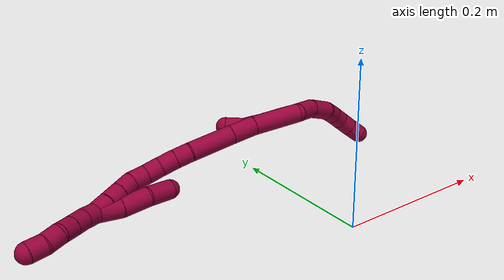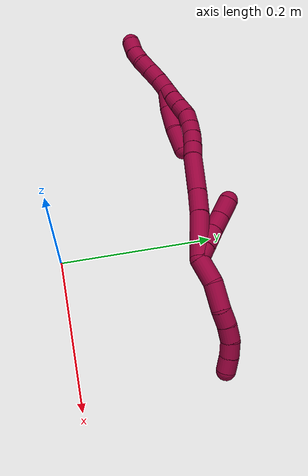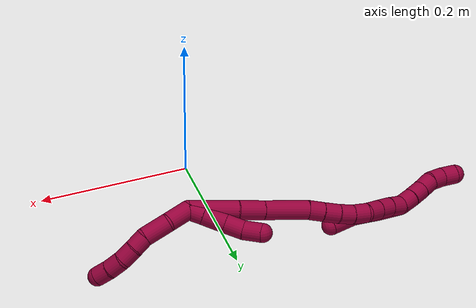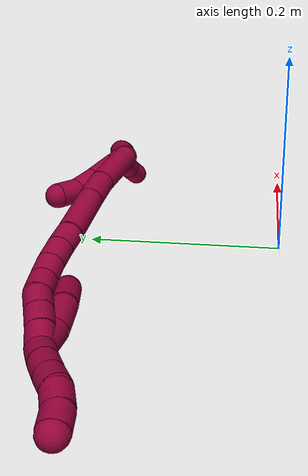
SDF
<sdf version="1.7">
 <world name="default">
  <model name="8">
   <static>0</static>
   <link name="8">
    <collision name="collision-cylinder-e_1_2_8">
     <pose>0.003864 -0.001137 0.016033 0.070781 0.235891 0.008391</pose>
     <geometry><cylinder><radius>0.0125</radius><length>0.033063</length></cylinder></geometry>
     <surface>
      <friction><ode><mu>1.16</mu><mu2>1.16</mu2><slip1>0</slip1><slip2>0</slip2></ode></friction>
      <contact><ode><kp>1e+06</kp><kd>1</kd><max_vel>0</max_vel><min_depth>0.001</min_depth></ode></contact>
     </surface>
    </collision>
    <visual name="visual-cylinder-e_1_2_8">
     <pose>0.003864 -0.001137 0.016033 0.070781 0.235891 0.008391</pose>
     <geometry><cylinder><radius>0.0125</radius><length>0.033063</length></cylinder></geometry>
     <material><ambient>0.584314 0 0.227451 1</ambient></material>
    </visual>
    <collision name="collision-cylinder-e_2_8_9">
     <pose>0.009689 -0.008103 0.048345 0.343881 0.112957 0.019636</pose>
     <geometry><cylinder><radius>0.0125</radius><length>0.034803</length></cylinder></geometry>
     <surface>
      <friction><ode><mu>1.16</mu><mu2>1.16</mu2><slip1>0</slip1><slip2>0</slip2></ode></friction>
      <contact><ode><kp>1e+06</kp><kd>1</kd><max_vel>0</max_vel><min_depth>0.001</min_depth></ode></contact>
     </surface>
    </collision>
    <visual name="visual-cylinder-e_2_8_9">
     <pose>0.009689 -0.008103 0.048345 0.343881 0.112957 0.019636</pose>
     <geometry><cylinder><radius>0.0125</radius><length>0.034803</length></cylinder></geometry>
     <material><ambient>0.584314 0 0.227451 1</ambient></material>
    </visual>
    <collision name="collision-cylinder-e_3_9_10">
     <pose>0.014758 -0.018934 0.072836 0.547047 0.312651 0.08838</pose>
     <geometry><cylinder><radius>0.0125</radius><length>0.020211</length></cylinder></geometry>
     <surface>
      <friction><ode><mu>1.16</mu><mu2>1.16</mu2><slip1>0</slip1><slip2>0</slip2></ode></friction>
      <contact><ode><kp>1e+06</kp><kd>1</kd><max_vel>0</max_vel><min_depth>0.001</min_depth></ode></contact>
     </surface>
    </collision>
    <visual name="visual-cylinder-e_3_9_10">
     <pose>0.014758 -0.018934 0.072836 0.547047 0.312651 0.08838</pose>
     <geometry><cylinder><radius>0.0125</radius><length>0.020211</length></cylinder></geometry>
     <material><ambient>0.584314 0 0.227451 1</ambient></material>
    </visual>
    <collision name="collision-cylinder-e_4_10_11">
     <pose>0.02012 -0.030255 0.089233 0.657522 0.214568 0.073447</pose>
     <geometry><cylinder><radius>0.0125</radius><length>0.021166</length></cylinder></geometry>
     <surface>
      <friction><ode><mu>1.16</mu><mu2>1.16</mu2><slip1>0</slip1><slip2>0</slip2></ode></friction>
      <contact><ode><kp>1e+06</kp><kd>1</kd><max_vel>0</max_vel><min_depth>0.001</min_depth></ode></contact>
     </surface>
    </collision>
    <visual name="visual-cylinder-e_4_10_11">
     <pose>0.02012 -0.030255 0.089233 0.657522 0.214568 0.073447</pose>
     <geometry><cylinder><radius>0.0125</radius><length>0.021166</length></cylinder></geometry>
     <material><ambient>0.584314 0 0.227451 1</ambient></material>
    </visual>
    <collision name="collision-cylinder-e_5_11_12">
     <pose>0.022172 -0.044016 0.104628 0.801131 -0.01941 -0.00822</pose>
     <geometry><cylinder><radius>0.0125</radius><length>0.020727</length></cylinder></geometry>
     <surface>
      <friction><ode><mu>1.16</mu><mu2>1.16</mu2><slip1>0</slip1><slip2>0</slip2></ode></friction>
      <contact><ode><kp>1e+06</kp><kd>1</kd><max_vel>0</max_vel><min_depth>0.001</min_depth></ode></contact>
     </surface>
    </collision>
    <visual name="visual-cylinder-e_5_11_12">
     <pose>0.022172 -0.044016 0.104628 0.801131 -0.01941 -0.00822</pose>
     <geometry><cylinder><radius>0.0125</radius><length>0.020727</length></cylinder></geometry>
     <material><ambient>0.584314 0 0.227451 1</ambient></material>
    </visual>
    <collision name="collision-cylinder-e_6_12_6">
     <pose>0.0204 -0.05883 0.118432 0.84112 -0.1575 -0.070558</pose>
     <geometry><cylinder><radius>0.0125</radius><length>0.02003</length></cylinder></geometry>
     <surface>
      <friction><ode><mu>1.16</mu><mu2>1.16</mu2><slip1>0</slip1><slip2>0</slip2></ode></friction>
      <contact><ode><kp>1e+06</kp><kd>1</kd><max_vel>0</max_vel><min_depth>0.001</min_depth></ode></contact>
     </surface>
    </collision>
    <visual name="visual-cylinder-e_6_12_6">
     <pose>0.0204 -0.05883 0.118432 0.84112 -0.1575 -0.070558</pose>
     <geometry><cylinder><radius>0.0125</radius><length>0.02003</length></cylinder></geometry>
     <material><ambient>0.584314 0 0.227451 1</ambient></material>
    </visual>
    <collision name="collision-cylinder-e_1_2_13">
     <pose>0.006834 9.9e-05 -0.007502 -3.12834 0.738783 -3.10737</pose>
     <geometry><cylinder><radius>0.0125</radius><length>0.020297</length></cylinder></geometry>
     <surface>
      <friction><ode><mu>1.16</mu><mu2>1.16</mu2><slip1>0</slip1><slip2>0</slip2></ode></friction>
      <contact><ode><kp>1e+06</kp><kd>1</kd><max_vel>0</max_vel><min_depth>0.001</min_depth></ode></contact>
     </surface>
    </collision>
    <visual name="visual-cylinder-e_1_2_13">
     <pose>0.006834 9.9e-05 -0.007502 -3.12834 0.738783 -3.10737</pose>
     <geometry><cylinder><radius>0.0125</radius><length>0.020297</length></cylinder></geometry>
     <material><ambient>0.584314 0 0.227451 1</ambient></material>
    </visual>
    <collision name="collision-cylinder-e_2_13_14">
     <pose>0.023613 -6.4e-05 -0.025812 3.11731 0.743705 3.07933</pose>
     <geometry><cylinder><radius>0.0125</radius><length>0.029378</length></cylinder></geometry>
     <surface>
      <friction><ode><mu>1.16</mu><mu2>1.16</mu2><slip1>0</slip1><slip2>0</slip2></ode></friction>
      <contact><ode><kp>1e+06</kp><kd>1</kd><max_vel>0</max_vel><min_depth>0.001</min_depth></ode></contact>
     </surface>
    </collision>
    <visual name="visual-cylinder-e_2_13_14">
     <pose>0.023613 -6.4e-05 -0.025812 3.11731 0.743705 3.07933</pose>
     <geometry><cylinder><radius>0.0125</radius><length>0.029378</length></cylinder></geometry>
     <material><ambient>0.584314 0 0.227451 1</ambient></material>
    </visual>
    <collision name="collision-cylinder-e_3_14_15">
     <pose>0.042275 9.3e-05 -0.045663 -3.09531 0.766484 -3.0269</pose>
     <geometry><cylinder><radius>0.0125</radius><length>0.025136</length></cylinder></geometry>
     <surface>
      <friction><ode><mu>1.16</mu><mu2>1.16</mu2><slip1>0</slip1><slip2>0</slip2></ode></friction>
      <contact><ode><kp>1e+06</kp><kd>1</kd><max_vel>0</max_vel><min_depth>0.001</min_depth></ode></contact>
     </surface>
    </collision>
    <visual name="visual-cylinder-e_3_14_15">
     <pose>0.042275 9.3e-05 -0.045663 -3.09531 0.766484 -3.0269</pose>
     <geometry><cylinder><radius>0.0125</radius><length>0.025136</length></cylinder></geometry>
     <material><ambient>0.584314 0 0.227451 1</ambient></material>
    </visual>
    <collision name="collision-cylinder-e_4_15_5">
     <pose>0.058852 0.004442 -0.063728 -2.73073 0.673981 -2.06851</pose>
     <geometry><cylinder><radius>0.0125</radius><length>0.025189</length></cylinder></geometry>
     <surface>
      <friction><ode><mu>1.16</mu><mu2>1.16</mu2><slip1>0</slip1><slip2>0</slip2></ode></friction>
      <contact><ode><kp>1e+06</kp><kd>1</kd><max_vel>0</max_vel><min_depth>0.001</min_depth></ode></contact>
     </surface>
    </collision>
    <visual name="visual-cylinder-e_4_15_5">
     <pose>0.058852 0.004442 -0.063728 -2.73073 0.673981 -2.06851</pose>
     <geometry><cylinder><radius>0.0125</radius><length>0.025189</length></cylinder></geometry>
     <material><ambient>0.584314 0 0.227451 1</ambient></material>
    </visual>
    <collision name="collision-cylinder-e_1_2_16">
     <pose>0.011129 0.001044 -0.030343 -3.10719 0.351343 -2.94836</pose>
     <geometry><cylinder><radius>0.0125</radius><length>0.064672</length></cylinder></geometry>
     <surface>
      <friction><ode><mu>1.16</mu><mu2>1.16</mu2><slip1>0</slip1><slip2>0</slip2></ode></friction>
      <contact><ode><kp>1e+06</kp><kd>1</kd><max_vel>0</max_vel><min_depth>0.001</min_depth></ode></contact>
     </surface>
    </collision>
    <visual name="visual-cylinder-e_1_2_16">
     <pose>0.011129 0.001044 -0.030343 -3.10719 0.351343 -2.94836</pose>
     <geometry><cylinder><radius>0.0125</radius><length>0.064672</length></cylinder></geometry>
     <material><ambient>0.584314 0 0.227451 1</ambient></material>
    </visual>
    <collision name="collision-cylinder-e_2_16_17">
     <pose>0.027191 0.001173 -0.076692 3.08447 0.298522 2.7661</pose>
     <geometry><cylinder><radius>0.0125</radius><length>0.033549</length></cylinder></geometry>
     <surface>
      <friction><ode><mu>1.16</mu><mu2>1.16</mu2><slip1>0</slip1><slip2>0</slip2></ode></friction>
      <contact><ode><kp>1e+06</kp><kd>1</kd><max_vel>0</max_vel><min_depth>0.001</min_depth></ode></contact>
     </surface>
    </collision>
    <visual name="visual-cylinder-e_2_16_17">
     <pose>0.027191 0.001173 -0.076692 3.08447 0.298522 2.7661</pose>
     <geometry><cylinder><radius>0.0125</radius><length>0.033549</length></cylinder></geometry>
     <material><ambient>0.584314 0 0.227451 1</ambient></material>
    </visual>
    <collision name="collision-cylinder-e_3_17_18">
     <pose>0.040161 -0.001714 -0.121115 3.07231 0.274983 2.65075</pose>
     <geometry><cylinder><radius>0.0125</radius><length>0.059195</length></cylinder></geometry>
     <surface>
      <friction><ode><mu>1.16</mu><mu2>1.16</mu2><slip1>0</slip1><slip2>0</slip2></ode></friction>
      <contact><ode><kp>1e+06</kp><kd>1</kd><max_vel>0</max_vel><min_depth>0.001</min_depth></ode></contact>
     </surface>
    </collision>
    <visual name="visual-cylinder-e_3_17_18">
     <pose>0.040161 -0.001714 -0.121115 3.07231 0.274983 2.65075</pose>
     <geometry><cylinder><radius>0.0125</radius><length>0.059195</length></cylinder></geometry>
     <material><ambient>0.584314 0 0.227451 1</ambient></material>
    </visual>
    <collision name="collision-cylinder-e_4_18_19">
     <pose>0.052242 -0.004884 -0.158943 3.01497 0.402972 2.53969</pose>
     <geometry><cylinder><radius>0.0125</radius><length>0.020626</length></cylinder></geometry>
     <surface>
      <friction><ode><mu>1.16</mu><mu2>1.16</mu2><slip1>0</slip1><slip2>0</slip2></ode></friction>
      <contact><ode><kp>1e+06</kp><kd>1</kd><max_vel>0</max_vel><min_depth>0.001</min_depth></ode></contact>
     </surface>
    </collision>
    <visual name="visual-cylinder-e_4_18_19">
     <pose>0.052242 -0.004884 -0.158943 3.01497 0.402972 2.53969</pose>
     <geometry><cylinder><radius>0.0125</radius><length>0.020626</length></cylinder></geometry>
     <material><ambient>0.584314 0 0.227451 1</ambient></material>
    </visual>
    <collision name="collision-cylinder-e_5_19_20">
     <pose>0.060112 -0.007687 -0.178243 2.98073 0.364755 2.31749</pose>
     <geometry><cylinder><radius>0.0125</radius><length>0.021447</length></cylinder></geometry>
     <surface>
      <friction><ode><mu>1.16</mu><mu2>1.16</mu2><slip1>0</slip1><slip2>0</slip2></ode></friction>
      <contact><ode><kp>1e+06</kp><kd>1</kd><max_vel>0</max_vel><min_depth>0.001</min_depth></ode></contact>
     </surface>
    </collision>
    <visual name="visual-cylinder-e_5_19_20">
     <pose>0.060112 -0.007687 -0.178243 2.98073 0.364755 2.31749</pose>
     <geometry><cylinder><radius>0.0125</radius><length>0.021447</length></cylinder></geometry>
     <material><ambient>0.584314 0 0.227451 1</ambient></material>
    </visual>
    <collision name="collision-cylinder-e_6_20_21">
     <pose>0.066505 -0.011017 -0.197643 2.96216 0.259635 1.93491</pose>
     <geometry><cylinder><radius>0.0125</radius><length>0.020003</length></cylinder></geometry>
     <surface>
      <friction><ode><mu>1.16</mu><mu2>1.16</mu2><slip1>0</slip1><slip2>0</slip2></ode></friction>
      <contact><ode><kp>1e+06</kp><kd>1</kd><max_vel>0</max_vel><min_depth>0.001</min_depth></ode></contact>
     </surface>
    </collision>
    <visual name="visual-cylinder-e_6_20_21">
     <pose>0.066505 -0.011017 -0.197643 2.96216 0.259635 1.93491</pose>
     <geometry><cylinder><radius>0.0125</radius><length>0.020003</length></cylinder></geometry>
     <material><ambient>0.584314 0 0.227451 1</ambient></material>
    </visual>
    <collision name="collision-cylinder-e_7_21_22">
     <pose>0.070543 -0.013627 -0.217215 3.05389 0.144618 2.05233</pose>
     <geometry><cylinder><radius>0.0125</radius><length>0.020413</length></cylinder></geometry>
     <surface>
      <friction><ode><mu>1.16</mu><mu2>1.16</mu2><slip1>0</slip1><slip2>0</slip2></ode></friction>
      <contact><ode><kp>1e+06</kp><kd>1</kd><max_vel>0</max_vel><min_depth>0.001</min_depth></ode></contact>
     </surface>
    </collision>
    <visual name="visual-cylinder-e_7_21_22">
     <pose>0.070543 -0.013627 -0.217215 3.05389 0.144618 2.05233</pose>
     <geometry><cylinder><radius>0.0125</radius><length>0.020413</length></cylinder></geometry>
     <material><ambient>0.584314 0 0.227451 1</ambient></material>
    </visual>
    <collision name="collision-cylinder-e_8_22_23">
     <pose>0.070941 -0.017363 -0.236814 2.85107 -0.107354 -0.703955</pose>
     <geometry><cylinder><radius>0.0125</radius><length>0.020026</length></cylinder></geometry>
     <surface>
      <friction><ode><mu>1.16</mu><mu2>1.16</mu2><slip1>0</slip1><slip2>0</slip2></ode></friction>
      <contact><ode><kp>1e+06</kp><kd>1</kd><max_vel>0</max_vel><min_depth>0.001</min_depth></ode></contact>
     </surface>
    </collision>
    <visual name="visual-cylinder-e_8_22_23">
     <pose>0.070941 -0.017363 -0.236814 2.85107 -0.107354 -0.703955</pose>
     <geometry><cylinder><radius>0.0125</radius><length>0.020026</length></cylinder></geometry>
     <material><ambient>0.584314 0 0.227451 1</ambient></material>
    </visual>
    <collision name="collision-cylinder-e_9_23_24">
     <pose>0.068897 -0.023051 -0.255894 2.85262 -0.097302 -0.645838</pose>
     <geometry><cylinder><radius>0.0125</radius><length>0.020002</length></cylinder></geometry>
     <surface>
      <friction><ode><mu>1.16</mu><mu2>1.16</mu2><slip1>0</slip1><slip2>0</slip2></ode></friction>
      <contact><ode><kp>1e+06</kp><kd>1</kd><max_vel>0</max_vel><min_depth>0.001</min_depth></ode></contact>
     </surface>
    </collision>
    <visual name="visual-cylinder-e_9_23_24">
     <pose>0.068897 -0.023051 -0.255894 2.85262 -0.097302 -0.645838</pose>
     <geometry><cylinder><radius>0.0125</radius><length>0.020002</length></cylinder></geometry>
     <material><ambient>0.584314 0 0.227451 1</ambient></material>
    </visual>
    <collision name="collision-cylinder-e_10_24_1">
     <pose>0.067777 -0.028964 -0.274984 2.82998 -0.014709 -0.093577</pose>
     <geometry><cylinder><radius>0.0125</radius><length>0.020067</length></cylinder></geometry>
     <surface>
      <friction><ode><mu>1.16</mu><mu2>1.16</mu2><slip1>0</slip1><slip2>0</slip2></ode></friction>
      <contact><ode><kp>1e+06</kp><kd>1</kd><max_vel>0</max_vel><min_depth>0.001</min_depth></ode></contact>
     </surface>
    </collision>
    <visual name="visual-cylinder-e_10_24_1">
     <pose>0.067777 -0.028964 -0.274984 2.82998 -0.014709 -0.093577</pose>
     <geometry><cylinder><radius>0.0125</radius><length>0.020067</length></cylinder></geometry>
     <material><ambient>0.584314 0 0.227451 1</ambient></material>
    </visual>
    <collision name="collision-cylinder-e_1_1_25">
     <pose>0.064564 -0.032076 -0.294052 3.13773 -0.311589 -3.11698</pose>
     <geometry><cylinder><radius>0.0125</radius><length>0.02</length></cylinder></geometry>
     <surface>
      <friction><ode><mu>1.16</mu><mu2>1.16</mu2><slip1>0</slip1><slip2>0</slip2></ode></friction>
      <contact><ode><kp>1e+06</kp><kd>1</kd><max_vel>0</max_vel><min_depth>0.001</min_depth></ode></contact>
     </surface>
    </collision>
    <visual name="visual-cylinder-e_1_1_25">
     <pose>0.064564 -0.032076 -0.294052 3.13773 -0.311589 -3.11698</pose>
     <geometry><cylinder><radius>0.0125</radius><length>0.02</length></cylinder></geometry>
     <material><ambient>0.584314 0 0.227451 1</ambient></material>
    </visual>
    <collision name="collision-cylinder-e_2_25_26">
     <pose>0.05784 -0.032672 -0.31286 3.08145 -0.374581 -2.82678</pose>
     <geometry><cylinder><radius>0.0125</radius><length>0.02</length></cylinder></geometry>
     <surface>
      <friction><ode><mu>1.16</mu><mu2>1.16</mu2><slip1>0</slip1><slip2>0</slip2></ode></friction>
      <contact><ode><kp>1e+06</kp><kd>1</kd><max_vel>0</max_vel><min_depth>0.001</min_depth></ode></contact>
     </surface>
    </collision>
    <visual name="visual-cylinder-e_2_25_26">
     <pose>0.05784 -0.032672 -0.31286 3.08145 -0.374581 -2.82678</pose>
     <geometry><cylinder><radius>0.0125</radius><length>0.02</length></cylinder></geometry>
     <material><ambient>0.584314 0 0.227451 1</ambient></material>
    </visual>
    <collision name="collision-cylinder-e_3_26_27">
     <pose>0.050109 -0.0335 -0.331279 3.11219 -0.419326 -3.00362</pose>
     <geometry><cylinder><radius>0.0125</radius><length>0.02</length></cylinder></geometry>
     <surface>
      <friction><ode><mu>1.16</mu><mu2>1.16</mu2><slip1>0</slip1><slip2>0</slip2></ode></friction>
      <contact><ode><kp>1e+06</kp><kd>1</kd><max_vel>0</max_vel><min_depth>0.001</min_depth></ode></contact>
     </surface>
    </collision>
    <visual name="visual-cylinder-e_3_26_27">
     <pose>0.050109 -0.0335 -0.331279 3.11219 -0.419326 -3.00362</pose>
     <geometry><cylinder><radius>0.0125</radius><length>0.02</length></cylinder></geometry>
     <material><ambient>0.584314 0 0.227451 1</ambient></material>
    </visual>
    <collision name="collision-cylinder-e_4_27_28">
     <pose>0.044697 -0.035641 -0.35014 2.95149 -0.134527 -1.23029</pose>
     <geometry><cylinder><radius>0.0125</radius><length>0.02</length></cylinder></geometry>
     <surface>
      <friction><ode><mu>1.16</mu><mu2>1.16</mu2><slip1>0</slip1><slip2>0</slip2></ode></friction>
      <contact><ode><kp>1e+06</kp><kd>1</kd><max_vel>0</max_vel><min_depth>0.001</min_depth></ode></contact>
     </surface>
    </collision>
    <visual name="visual-cylinder-e_4_27_28">
     <pose>0.044697 -0.035641 -0.35014 2.95149 -0.134527 -1.23029</pose>
     <geometry><cylinder><radius>0.0125</radius><length>0.02</length></cylinder></geometry>
     <material><ambient>0.584314 0 0.227451 1</ambient></material>
    </visual>
    <collision name="collision-cylinder-e_5_28_4">
     <pose>0.04391 -0.038009 -0.369844 3.09197 0.055448 1.68157</pose>
     <geometry><cylinder><radius>0.0125</radius><length>0.02</length></cylinder></geometry>
     <surface>
      <friction><ode><mu>1.16</mu><mu2>1.16</mu2><slip1>0</slip1><slip2>0</slip2></ode></friction>
      <contact><ode><kp>1e+06</kp><kd>1</kd><max_vel>0</max_vel><min_depth>0.001</min_depth></ode></contact>
     </surface>
    </collision>
    <visual name="visual-cylinder-e_5_28_4">
     <pose>0.04391 -0.038009 -0.369844 3.09197 0.055448 1.68157</pose>
     <geometry><cylinder><radius>0.0125</radius><length>0.02</length></cylinder></geometry>
     <material><ambient>0.584314 0 0.227451 1</ambient></material>
    </visual>
    <collision name="collision-cylinder-e_1_1_29">
     <pose>0.065356 -0.034732 -0.269555 0.177851 -0.148329 -0.013249</pose>
     <geometry><cylinder><radius>0.0125</radius><length>0.030774</length></cylinder></geometry>
     <surface>
      <friction><ode><mu>1.16</mu><mu2>1.16</mu2><slip1>0</slip1><slip2>0</slip2></ode></friction>
      <contact><ode><kp>1e+06</kp><kd>1</kd><max_vel>0</max_vel><min_depth>0.001</min_depth></ode></contact>
     </surface>
    </collision>
    <visual name="visual-cylinder-e_1_1_29">
     <pose>0.065356 -0.034732 -0.269555 0.177851 -0.148329 -0.013249</pose>
     <geometry><cylinder><radius>0.0125</radius><length>0.030774</length></cylinder></geometry>
     <material><ambient>0.584314 0 0.227451 1</ambient></material>
    </visual>
    <collision name="collision-cylinder-e_2_29_30">
     <pose>0.061159 -0.037136 -0.236832 -0.016228 -0.107945 0.000877</pose>
     <geometry><cylinder><radius>0.0125</radius><length>0.035703</length></cylinder></geometry>
     <surface>
      <friction><ode><mu>1.16</mu><mu2>1.16</mu2><slip1>0</slip1><slip2>0</slip2></ode></friction>
      <contact><ode><kp>1e+06</kp><kd>1</kd><max_vel>0</max_vel><min_depth>0.001</min_depth></ode></contact>
     </surface>
    </collision>
    <visual name="visual-cylinder-e_2_29_30">
     <pose>0.061159 -0.037136 -0.236832 -0.016228 -0.107945 0.000877</pose>
     <geometry><cylinder><radius>0.0125</radius><length>0.035703</length></cylinder></geometry>
     <material><ambient>0.584314 0 0.227451 1</ambient></material>
    </visual>
    <collision name="collision-cylinder-e_3_30_3">
     <pose>0.060508 -0.038273 -0.202434 0.085378 0.07598 0.003247</pose>
     <geometry><cylinder><radius>0.0125</radius><length>0.033523</length></cylinder></geometry>
     <surface>
      <friction><ode><mu>1.16</mu><mu2>1.16</mu2><slip1>0</slip1><slip2>0</slip2></ode></friction>
      <contact><ode><kp>1e+06</kp><kd>1</kd><max_vel>0</max_vel><min_depth>0.001</min_depth></ode></contact>
     </surface>
    </collision>
    <visual name="visual-cylinder-e_3_30_3">
     <pose>0.060508 -0.038273 -0.202434 0.085378 0.07598 0.003247</pose>
     <geometry><cylinder><radius>0.0125</radius><length>0.033523</length></cylinder></geometry>
     <material><ambient>0.584314 0 0.227451 1</ambient></material>
    </visual>
    <collision name="collision-sphere-3">
     <pose>0.06178 -0.039698 -0.185782 0 -0 0</pose>
     <geometry><sphere><radius>0.0125</radius></sphere></geometry>
     <surface>
      <friction><ode><mu>1.16</mu><mu2>1.16</mu2><slip1>0</slip1><slip2>0</slip2></ode></friction>
      <contact><ode><kp>1e+06</kp><kd>1</kd><max_vel>0</max_vel><min_depth>0.001</min_depth></ode></contact>
     </surface>
    </collision>
    <visual name="visual-sphere-3">
     <pose>0.06178 -0.039698 -0.185782 0 -0 0</pose>
     <geometry><sphere><radius>0.0125</radius></sphere></geometry>
     <material><ambient>0.584314 0 0.227451 1</ambient></material>
    </visual>
    <collision name="collision-sphere-30">
     <pose>0.059235 -0.036848 -0.219087 0 -0 0</pose>
     <geometry><sphere><radius>0.0125</radius></sphere></geometry>
     <surface>
      <friction><ode><mu>1.16</mu><mu2>1.16</mu2><slip1>0</slip1><slip2>0</slip2></ode></friction>
      <contact><ode><kp>1e+06</kp><kd>1</kd><max_vel>0</max_vel><min_depth>0.001</min_depth></ode></contact>
     </surface>
    </collision>
    <visual name="visual-sphere-30">
     <pose>0.059235 -0.036848 -0.219087 0 -0 0</pose>
     <geometry><sphere><radius>0.0125</radius></sphere></geometry>
     <material><ambient>0.584314 0 0.227451 1</ambient></material>
    </visual>
    <collision name="collision-sphere-29">
     <pose>0.063082 -0.037424 -0.254577 0 -0 0</pose>
     <geometry><sphere><radius>0.0125</radius></sphere></geometry>
     <surface>
      <friction><ode><mu>1.16</mu><mu2>1.16</mu2><slip1>0</slip1><slip2>0</slip2></ode></friction>
      <contact><ode><kp>1e+06</kp><kd>1</kd><max_vel>0</max_vel><min_depth>0.001</min_depth></ode></contact>
     </surface>
    </collision>
    <visual name="visual-sphere-29">
     <pose>0.063082 -0.037424 -0.254577 0 -0 0</pose>
     <geometry><sphere><radius>0.0125</radius></sphere></geometry>
     <material><ambient>0.584314 0 0.227451 1</ambient></material>
    </visual>
    <collision name="collision-sphere-4">
     <pose>0.044464 -0.038504 -0.379816 0 -0 0</pose>
     <geometry><sphere><radius>0.0125</radius></sphere></geometry>
     <surface>
      <friction><ode><mu>1.16</mu><mu2>1.16</mu2><slip1>0</slip1><slip2>0</slip2></ode></friction>
      <contact><ode><kp>1e+06</kp><kd>1</kd><max_vel>0</max_vel><min_depth>0.001</min_depth></ode></contact>
     </surface>
    </collision>
    <visual name="visual-sphere-4">
     <pose>0.044464 -0.038504 -0.379816 0 -0 0</pose>
     <geometry><sphere><radius>0.0125</radius></sphere></geometry>
     <material><ambient>0.584314 0 0.227451 1</ambient></material>
    </visual>
    <collision name="collision-sphere-28">
     <pose>0.043355 -0.037514 -0.359871 0 -0 0</pose>
     <geometry><sphere><radius>0.0125</radius></sphere></geometry>
     <surface>
      <friction><ode><mu>1.16</mu><mu2>1.16</mu2><slip1>0</slip1><slip2>0</slip2></ode></friction>
      <contact><ode><kp>1e+06</kp><kd>1</kd><max_vel>0</max_vel><min_depth>0.001</min_depth></ode></contact>
     </surface>
    </collision>
    <visual name="visual-sphere-28">
     <pose>0.043355 -0.037514 -0.359871 0 -0 0</pose>
     <geometry><sphere><radius>0.0125</radius></sphere></geometry>
     <material><ambient>0.584314 0 0.227451 1</ambient></material>
    </visual>
    <collision name="collision-sphere-27">
     <pose>0.046038 -0.033769 -0.340409 0 -0 0</pose>
     <geometry><sphere><radius>0.0125</radius></sphere></geometry>
     <surface>
      <friction><ode><mu>1.16</mu><mu2>1.16</mu2><slip1>0</slip1><slip2>0</slip2></ode></friction>
      <contact><ode><kp>1e+06</kp><kd>1</kd><max_vel>0</max_vel><min_depth>0.001</min_depth></ode></contact>
     </surface>
    </collision>
    <visual name="visual-sphere-27">
     <pose>0.046038 -0.033769 -0.340409 0 -0 0</pose>
     <geometry><sphere><radius>0.0125</radius></sphere></geometry>
     <material><ambient>0.584314 0 0.227451 1</ambient></material>
    </visual>
    <collision name="collision-sphere-26">
     <pose>0.054181 -0.033232 -0.32215 0 -0 0</pose>
     <geometry><sphere><radius>0.0125</radius></sphere></geometry>
     <surface>
      <friction><ode><mu>1.16</mu><mu2>1.16</mu2><slip1>0</slip1><slip2>0</slip2></ode></friction>
      <contact><ode><kp>1e+06</kp><kd>1</kd><max_vel>0</max_vel><min_depth>0.001</min_depth></ode></contact>
     </surface>
    </collision>
    <visual name="visual-sphere-26">
     <pose>0.054181 -0.033232 -0.32215 0 -0 0</pose>
     <geometry><sphere><radius>0.0125</radius></sphere></geometry>
     <material><ambient>0.584314 0 0.227451 1</ambient></material>
    </visual>
    <collision name="collision-sphere-25">
     <pose>0.061498 -0.032113 -0.30357 0 -0 0</pose>
     <geometry><sphere><radius>0.0125</radius></sphere></geometry>
     <surface>
      <friction><ode><mu>1.16</mu><mu2>1.16</mu2><slip1>0</slip1><slip2>0</slip2></ode></friction>
      <contact><ode><kp>1e+06</kp><kd>1</kd><max_vel>0</max_vel><min_depth>0.001</min_depth></ode></contact>
     </surface>
    </collision>
    <visual name="visual-sphere-25">
     <pose>0.061498 -0.032113 -0.30357 0 -0 0</pose>
     <geometry><sphere><radius>0.0125</radius></sphere></geometry>
     <material><ambient>0.584314 0 0.227451 1</ambient></material>
    </visual>
    <collision name="collision-sphere-1">
     <pose>0.06763 -0.032039 -0.284533 0 -0 0</pose>
     <geometry><sphere><radius>0.0125</radius></sphere></geometry>
     <surface>
      <friction><ode><mu>1.16</mu><mu2>1.16</mu2><slip1>0</slip1><slip2>0</slip2></ode></friction>
      <contact><ode><kp>1e+06</kp><kd>1</kd><max_vel>0</max_vel><min_depth>0.001</min_depth></ode></contact>
     </surface>
    </collision>
    <visual name="visual-sphere-1">
     <pose>0.06763 -0.032039 -0.284533 0 -0 0</pose>
     <geometry><sphere><radius>0.0125</radius></sphere></geometry>
     <material><ambient>0.584314 0 0.227451 1</ambient></material>
    </visual>
    <collision name="collision-sphere-24">
     <pose>0.067925 -0.025888 -0.265435 0 -0 0</pose>
     <geometry><sphere><radius>0.0125</radius></sphere></geometry>
     <surface>
      <friction><ode><mu>1.16</mu><mu2>1.16</mu2><slip1>0</slip1><slip2>0</slip2></ode></friction>
      <contact><ode><kp>1e+06</kp><kd>1</kd><max_vel>0</max_vel><min_depth>0.001</min_depth></ode></contact>
     </surface>
    </collision>
    <visual name="visual-sphere-24">
     <pose>0.067925 -0.025888 -0.265435 0 -0 0</pose>
     <geometry><sphere><radius>0.0125</radius></sphere></geometry>
     <material><ambient>0.584314 0 0.227451 1</ambient></material>
    </visual>
    <collision name="collision-sphere-23">
     <pose>0.069868 -0.020215 -0.246353 0 -0 0</pose>
     <geometry><sphere><radius>0.0125</radius></sphere></geometry>
     <surface>
      <friction><ode><mu>1.16</mu><mu2>1.16</mu2><slip1>0</slip1><slip2>0</slip2></ode></friction>
      <contact><ode><kp>1e+06</kp><kd>1</kd><max_vel>0</max_vel><min_depth>0.001</min_depth></ode></contact>
     </surface>
    </collision>
    <visual name="visual-sphere-23">
     <pose>0.069868 -0.020215 -0.246353 0 -0 0</pose>
     <geometry><sphere><radius>0.0125</radius></sphere></geometry>
     <material><ambient>0.584314 0 0.227451 1</ambient></material>
    </visual>
    <collision name="collision-sphere-22">
     <pose>0.072014 -0.014511 -0.227276 0 -0 0</pose>
     <geometry><sphere><radius>0.0125</radius></sphere></geometry>
     <surface>
      <friction><ode><mu>1.16</mu><mu2>1.16</mu2><slip1>0</slip1><slip2>0</slip2></ode></friction>
      <contact><ode><kp>1e+06</kp><kd>1</kd><max_vel>0</max_vel><min_depth>0.001</min_depth></ode></contact>
     </surface>
    </collision>
    <visual name="visual-sphere-22">
     <pose>0.072014 -0.014511 -0.227276 0 -0 0</pose>
     <geometry><sphere><radius>0.0125</radius></sphere></geometry>
     <material><ambient>0.584314 0 0.227451 1</ambient></material>
    </visual>
    <collision name="collision-sphere-21">
     <pose>0.069072 -0.012742 -0.207154 0 -0 0</pose>
     <geometry><sphere><radius>0.0125</radius></sphere></geometry>
     <surface>
      <friction><ode><mu>1.16</mu><mu2>1.16</mu2><slip1>0</slip1><slip2>0</slip2></ode></friction>
      <contact><ode><kp>1e+06</kp><kd>1</kd><max_vel>0</max_vel><min_depth>0.001</min_depth></ode></contact>
     </surface>
    </collision>
    <visual name="visual-sphere-21">
     <pose>0.069072 -0.012742 -0.207154 0 -0 0</pose>
     <geometry><sphere><radius>0.0125</radius></sphere></geometry>
     <material><ambient>0.584314 0 0.227451 1</ambient></material>
    </visual>
    <collision name="collision-sphere-12">
     <pose>0.021971 -0.051457 0.111838 0 -0 0</pose>
     <geometry><sphere><radius>0.0125</radius></sphere></geometry>
     <surface>
      <friction><ode><mu>1.16</mu><mu2>1.16</mu2><slip1>0</slip1><slip2>0</slip2></ode></friction>
      <contact><ode><kp>1e+06</kp><kd>1</kd><max_vel>0</max_vel><min_depth>0.001</min_depth></ode></contact>
     </surface>
    </collision>
    <visual name="visual-sphere-12">
     <pose>0.021971 -0.051457 0.111838 0 -0 0</pose>
     <geometry><sphere><radius>0.0125</radius></sphere></geometry>
     <material><ambient>0.584314 0 0.227451 1</ambient></material>
    </visual>
    <collision name="collision-sphere-11">
     <pose>0.022373 -0.036575 0.097417 0 -0 0</pose>
     <geometry><sphere><radius>0.0125</radius></sphere></geometry>
     <surface>
      <friction><ode><mu>1.16</mu><mu2>1.16</mu2><slip1>0</slip1><slip2>0</slip2></ode></friction>
      <contact><ode><kp>1e+06</kp><kd>1</kd><max_vel>0</max_vel><min_depth>0.001</min_depth></ode></contact>
     </surface>
    </collision>
    <visual name="visual-sphere-11">
     <pose>0.022373 -0.036575 0.097417 0 -0 0</pose>
     <geometry><sphere><radius>0.0125</radius></sphere></geometry>
     <material><ambient>0.584314 0 0.227451 1</ambient></material>
    </visual>
    <collision name="collision-sphere-10">
     <pose>0.017867 -0.023936 0.081048 0 -0 0</pose>
     <geometry><sphere><radius>0.0125</radius></sphere></geometry>
     <surface>
      <friction><ode><mu>1.16</mu><mu2>1.16</mu2><slip1>0</slip1><slip2>0</slip2></ode></friction>
      <contact><ode><kp>1e+06</kp><kd>1</kd><max_vel>0</max_vel><min_depth>0.001</min_depth></ode></contact>
     </surface>
    </collision>
    <visual name="visual-sphere-10">
     <pose>0.017867 -0.023936 0.081048 0 -0 0</pose>
     <geometry><sphere><radius>0.0125</radius></sphere></geometry>
     <material><ambient>0.584314 0 0.227451 1</ambient></material>
    </visual>
    <collision name="collision-sphere-9">
     <pose>0.01165 -0.013932 0.064623 0 -0 0</pose>
     <geometry><sphere><radius>0.0125</radius></sphere></geometry>
     <surface>
      <friction><ode><mu>1.16</mu><mu2>1.16</mu2><slip1>0</slip1><slip2>0</slip2></ode></friction>
      <contact><ode><kp>1e+06</kp><kd>1</kd><max_vel>0</max_vel><min_depth>0.001</min_depth></ode></contact>
     </surface>
    </collision>
    <visual name="visual-sphere-9">
     <pose>0.01165 -0.013932 0.064623 0 -0 0</pose>
     <geometry><sphere><radius>0.0125</radius></sphere></geometry>
     <material><ambient>0.584314 0 0.227451 1</ambient></material>
    </visual>
    <collision name="collision-sphere-2">
     <geometry><sphere><radius>0.0125</radius></sphere></geometry>
     <surface>
      <friction><ode><mu>1.16</mu><mu2>1.16</mu2><slip1>0</slip1><slip2>0</slip2></ode></friction>
      <contact><ode><kp>1e+06</kp><kd>1</kd><max_vel>0</max_vel><min_depth>0.001</min_depth></ode></contact>
     </surface>
    </collision>
    <visual name="visual-sphere-2">
     <geometry><sphere><radius>0.0125</radius></sphere></geometry>
     <material><ambient>0.584314 0 0.227451 1</ambient></material>
    </visual>
    <collision name="collision-sphere-19">
     <pose>0.056286 -0.006082 -0.168354 0 -0 0</pose>
     <geometry><sphere><radius>0.0125</radius></sphere></geometry>
     <surface>
      <friction><ode><mu>1.16</mu><mu2>1.16</mu2><slip1>0</slip1><slip2>0</slip2></ode></friction>
      <contact><ode><kp>1e+06</kp><kd>1</kd><max_vel>0</max_vel><min_depth>0.001</min_depth></ode></contact>
     </surface>
    </collision>
    <visual name="visual-sphere-19">
     <pose>0.056286 -0.006082 -0.168354 0 -0 0</pose>
     <geometry><sphere><radius>0.0125</radius></sphere></geometry>
     <material><ambient>0.584314 0 0.227451 1</ambient></material>
    </visual>
    <collision name="collision-sphere-8">
     <pose>0.007727 -0.002274 0.032067 0 -0 0</pose>
     <geometry><sphere><radius>0.0125</radius></sphere></geometry>
     <surface>
      <friction><ode><mu>1.16</mu><mu2>1.16</mu2><slip1>0</slip1><slip2>0</slip2></ode></friction>
      <contact><ode><kp>1e+06</kp><kd>1</kd><max_vel>0</max_vel><min_depth>0.001</min_depth></ode></contact>
     </surface>
    </collision>
    <visual name="visual-sphere-8">
     <pose>0.007727 -0.002274 0.032067 0 -0 0</pose>
     <geometry><sphere><radius>0.0125</radius></sphere></geometry>
     <material><ambient>0.584314 0 0.227451 1</ambient></material>
    </visual>
    <collision name="collision-sphere-6">
     <pose>0.018829 -0.066202 0.125025 0 -0 0</pose>
     <geometry><sphere><radius>0.0125</radius></sphere></geometry>
     <surface>
      <friction><ode><mu>1.16</mu><mu2>1.16</mu2><slip1>0</slip1><slip2>0</slip2></ode></friction>
      <contact><ode><kp>1e+06</kp><kd>1</kd><max_vel>0</max_vel><min_depth>0.001</min_depth></ode></contact>
     </surface>
    </collision>
    <visual name="visual-sphere-6">
     <pose>0.018829 -0.066202 0.125025 0 -0 0</pose>
     <geometry><sphere><radius>0.0125</radius></sphere></geometry>
     <material><ambient>0.584314 0 0.227451 1</ambient></material>
    </visual>
    <collision name="collision-sphere-13">
     <pose>0.013668 0.000199 -0.015004 0 -0 0</pose>
     <geometry><sphere><radius>0.0125</radius></sphere></geometry>
     <surface>
      <friction><ode><mu>1.16</mu><mu2>1.16</mu2><slip1>0</slip1><slip2>0</slip2></ode></friction>
      <contact><ode><kp>1e+06</kp><kd>1</kd><max_vel>0</max_vel><min_depth>0.001</min_depth></ode></contact>
     </surface>
    </collision>
    <visual name="visual-sphere-13">
     <pose>0.013668 0.000199 -0.015004 0 -0 0</pose>
     <geometry><sphere><radius>0.0125</radius></sphere></geometry>
     <material><ambient>0.584314 0 0.227451 1</ambient></material>
    </visual>
    <collision name="collision-sphere-14">
     <pose>0.033557 -0.000326 -0.036619 0 -0 0</pose>
     <geometry><sphere><radius>0.0125</radius></sphere></geometry>
     <surface>
      <friction><ode><mu>1.16</mu><mu2>1.16</mu2><slip1>0</slip1><slip2>0</slip2></ode></friction>
      <contact><ode><kp>1e+06</kp><kd>1</kd><max_vel>0</max_vel><min_depth>0.001</min_depth></ode></contact>
     </surface>
    </collision>
    <visual name="visual-sphere-14">
     <pose>0.033557 -0.000326 -0.036619 0 -0 0</pose>
     <geometry><sphere><radius>0.0125</radius></sphere></geometry>
     <material><ambient>0.584314 0 0.227451 1</ambient></material>
    </visual>
    <collision name="collision-sphere-15">
     <pose>0.050992 0.000512 -0.054706 0 -0 0</pose>
     <geometry><sphere><radius>0.0125</radius></sphere></geometry>
     <surface>
      <friction><ode><mu>1.16</mu><mu2>1.16</mu2><slip1>0</slip1><slip2>0</slip2></ode></friction>
      <contact><ode><kp>1e+06</kp><kd>1</kd><max_vel>0</max_vel><min_depth>0.001</min_depth></ode></contact>
     </surface>
    </collision>
    <visual name="visual-sphere-15">
     <pose>0.050992 0.000512 -0.054706 0 -0 0</pose>
     <geometry><sphere><radius>0.0125</radius></sphere></geometry>
     <material><ambient>0.584314 0 0.227451 1</ambient></material>
    </visual>
    <collision name="collision-sphere-5">
     <pose>0.066712 0.008372 -0.07275 0 -0 0</pose>
     <geometry><sphere><radius>0.0125</radius></sphere></geometry>
     <surface>
      <friction><ode><mu>1.16</mu><mu2>1.16</mu2><slip1>0</slip1><slip2>0</slip2></ode></friction>
      <contact><ode><kp>1e+06</kp><kd>1</kd><max_vel>0</max_vel><min_depth>0.001</min_depth></ode></contact>
     </surface>
    </collision>
    <visual name="visual-sphere-5">
     <pose>0.066712 0.008372 -0.07275 0 -0 0</pose>
     <geometry><sphere><radius>0.0125</radius></sphere></geometry>
     <material><ambient>0.584314 0 0.227451 1</ambient></material>
    </visual>
    <collision name="collision-sphere-16">
     <pose>0.022257 0.002089 -0.060685 0 -0 0</pose>
     <geometry><sphere><radius>0.0125</radius></sphere></geometry>
     <surface>
      <friction><ode><mu>1.16</mu><mu2>1.16</mu2><slip1>0</slip1><slip2>0</slip2></ode></friction>
      <contact><ode><kp>1e+06</kp><kd>1</kd><max_vel>0</max_vel><min_depth>0.001</min_depth></ode></contact>
     </surface>
    </collision>
    <visual name="visual-sphere-16">
     <pose>0.022257 0.002089 -0.060685 0 -0 0</pose>
     <geometry><sphere><radius>0.0125</radius></sphere></geometry>
     <material><ambient>0.584314 0 0.227451 1</ambient></material>
    </visual>
    <collision name="collision-sphere-17">
     <pose>0.032124 0.000258 -0.092698 0 -0 0</pose>
     <geometry><sphere><radius>0.0125</radius></sphere></geometry>
     <surface>
      <friction><ode><mu>1.16</mu><mu2>1.16</mu2><slip1>0</slip1><slip2>0</slip2></ode></friction>
      <contact><ode><kp>1e+06</kp><kd>1</kd><max_vel>0</max_vel><min_depth>0.001</min_depth></ode></contact>
     </surface>
    </collision>
    <visual name="visual-sphere-17">
     <pose>0.032124 0.000258 -0.092698 0 -0 0</pose>
     <geometry><sphere><radius>0.0125</radius></sphere></geometry>
     <material><ambient>0.584314 0 0.227451 1</ambient></material>
    </visual>
    <collision name="collision-sphere-18">
     <pose>0.048198 -0.003686 -0.149532 0 -0 0</pose>
     <geometry><sphere><radius>0.0125</radius></sphere></geometry>
     <surface>
      <friction><ode><mu>1.16</mu><mu2>1.16</mu2><slip1>0</slip1><slip2>0</slip2></ode></friction>
      <contact><ode><kp>1e+06</kp><kd>1</kd><max_vel>0</max_vel><min_depth>0.001</min_depth></ode></contact>
     </surface>
    </collision>
    <visual name="visual-sphere-18">
     <pose>0.048198 -0.003686 -0.149532 0 -0 0</pose>
     <geometry><sphere><radius>0.0125</radius></sphere></geometry>
     <material><ambient>0.584314 0 0.227451 1</ambient></material>
    </visual>
    <collision name="collision-sphere-20">
     <pose>0.063937 -0.009292 -0.188132 0 -0 0</pose>
     <geometry><sphere><radius>0.0125</radius></sphere></geometry>
     <surface>
      <friction><ode><mu>1.16</mu><mu2>1.16</mu2><slip1>0</slip1><slip2>0</slip2></ode></friction>
      <contact><ode><kp>1e+06</kp><kd>1</kd><max_vel>0</max_vel><min_depth>0.001</min_depth></ode></contact>
     </surface>
    </collision>
    <visual name="visual-sphere-20">
     <pose>0.063937 -0.009292 -0.188132 0 -0 0</pose>
     <geometry><sphere><radius>0.0125</radius></sphere></geometry>
     <material><ambient>0.584314 0 0.227451 1</ambient></material>
    </visual>
    <inertial>
     <pose>0.040247 -0.016778 -0.123763 0 -0 0</pose>
     <mass>0.75</mass>
     <inertia><ixx>-9e-06</ixx><ixy>0</ixy><ixz>0</ixz><iyy>8.4e-05</iyy><iyz>0</iyz><izz>-3.1e-05</izz></inertia>
    </inertial>
   </link>
   <pose>0.055403 0.171655 0.076766 1.54134 0.364083 1.6965</pose>
  </model>
 </world>
</sdf>
